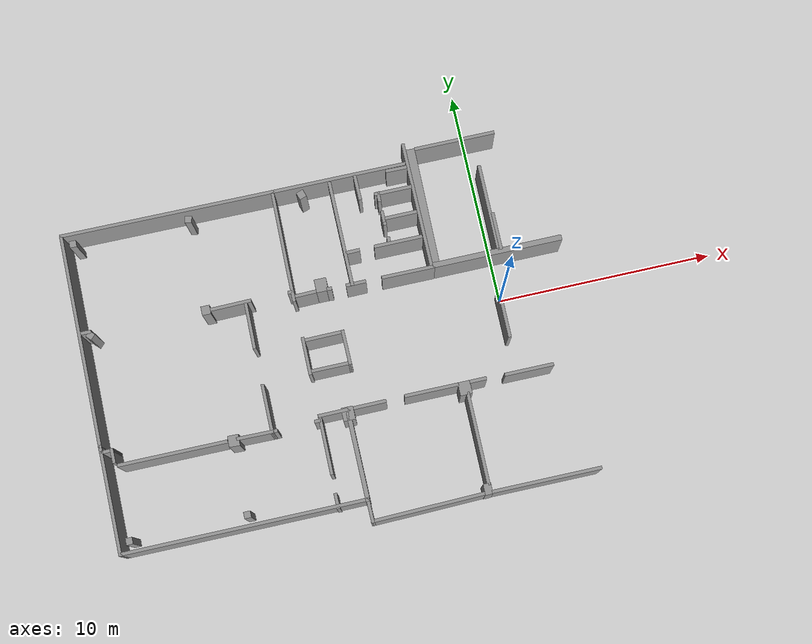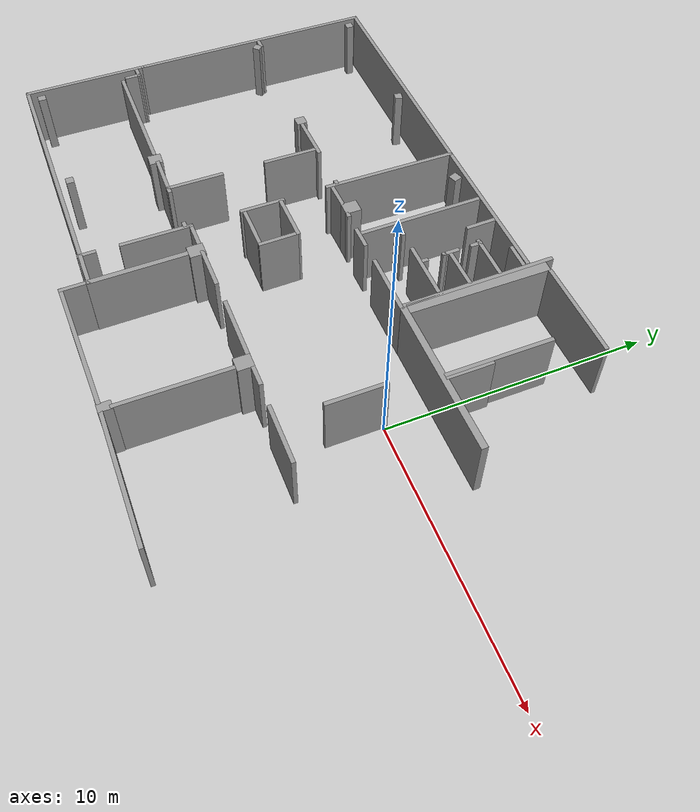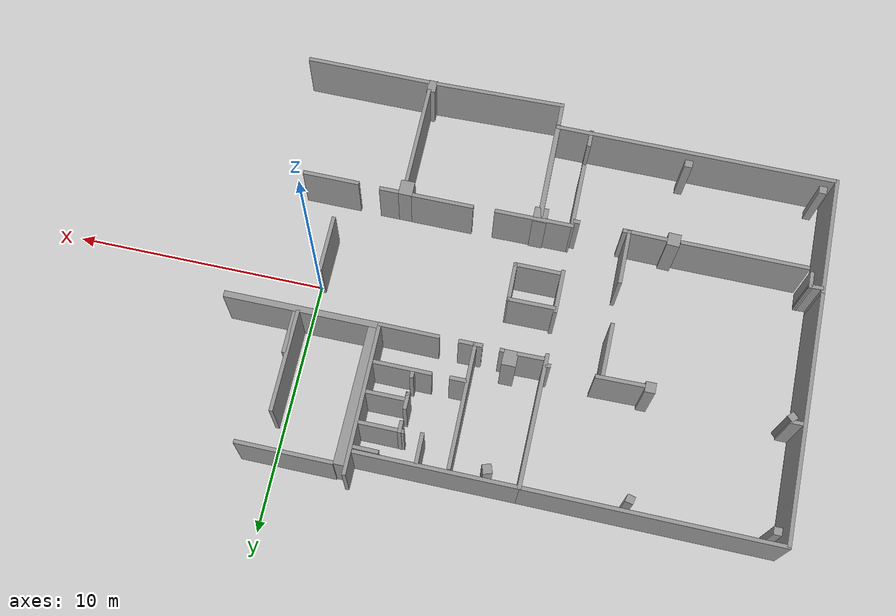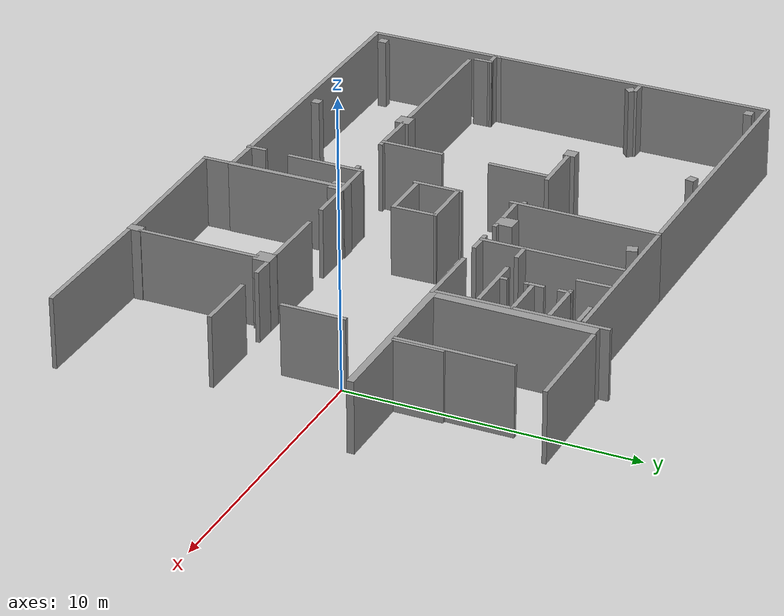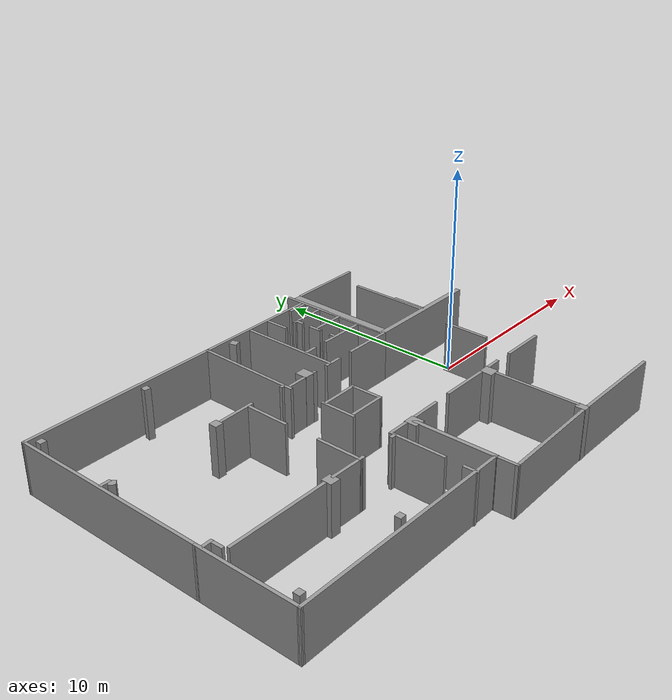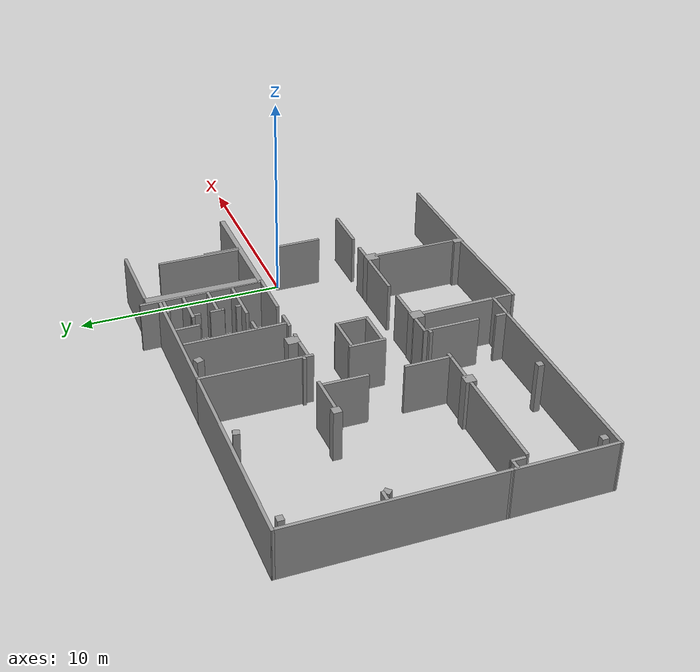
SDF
<sdf version="1.7">
 <model name="New_6_OG_normale_tueren">
  <pose>10.3487 -1.93317 0 0 -0 0</pose>
  <link name="Wall_101">
   <collision name="Wall_101_Collision">
    <geometry><box><size>1.67458 0.15 2.5</size></box></geometry>
    <pose>0 0 1.25 0 -0 0</pose>
   </collision>
   <visual name="Wall_101_Visual">
    <pose>0 0 1.25 0 -0 0</pose>
    <geometry><box><size>1.67458 0.15 2.5</size></box></geometry>
    <material>
     <script><uri>file://media/materials/scripts/gazebo.material</uri><name>Gazebo/Grey</name></script>
     <ambient>1 1 1 1</ambient>
    </material>
    <meta><layer>0</layer></meta>
   </visual>
   <pose>-22.5677 -2.0456 0 0 -0 -0.013157</pose>
  </link>
  <link name="Wall_103">
   <collision name="Wall_103_Collision">
    <geometry><box><size>0.272233 0.15 2.5</size></box></geometry>
    <pose>0 0 1.25 0 -0 0</pose>
   </collision>
   <visual name="Wall_103_Visual">
    <pose>0 0 1.25 0 -0 0</pose>
    <geometry><box><size>0.272233 0.15 2.5</size></box></geometry>
    <material>
     <script><uri>file://media/materials/scripts/gazebo.material</uri><name>Gazebo/Grey</name></script>
     <ambient>1 1 1 1</ambient>
    </material>
    <meta><layer>0</layer></meta>
   </visual>
   <pose>-19.7245 -2.0262 0 0 -0 0</pose>
  </link>
  <link name="Wall_105">
   <collision name="Wall_105_Collision">
    <geometry><box><size>2.25 0.15 2.5</size></box></geometry>
    <pose>0 0 1.25 0 -0 0</pose>
   </collision>
   <visual name="Wall_105_Visual">
    <pose>0 0 1.25 0 -0 0</pose>
    <geometry><box><size>2.25 0.15 2.5</size></box></geometry>
    <material>
     <script><uri>file://media/materials/scripts/gazebo.material</uri><name>Gazebo/Grey</name></script>
     <ambient>1 1 1 1</ambient>
    </material>
    <meta><layer>0</layer></meta>
   </visual>
   <pose>-21.7903 -1.00562 0 0 -0 1.5708</pose>
  </link>
  <link name="Wall_107">
   <collision name="Wall_107_Collision">
    <geometry><box><size>0.330367 0.15 2.5</size></box></geometry>
    <pose>0 0 1.25 0 -0 0</pose>
   </collision>
   <visual name="Wall_107_Visual">
    <pose>0 0 1.25 0 -0 0</pose>
    <geometry><box><size>0.330367 0.15 2.5</size></box></geometry>
    <material>
     <script><uri>file://media/materials/scripts/gazebo.material</uri><name>Gazebo/Grey</name></script>
     <ambient>1 1 1 1</ambient>
    </material>
    <meta><layer>0</layer></meta>
   </visual>
   <pose>-21.7001 -2.05463 0 0 -0 0.011083</pose>
  </link>
  <link name="Wall_109">
   <collision name="Wall_109_Collision">
    <geometry><box><size>2.12399 0.15 2.5</size></box></geometry>
    <pose>0 0 1.25 0 -0 0</pose>
   </collision>
   <visual name="Wall_109_Visual">
    <pose>0 0 1.25 0 -0 0</pose>
    <geometry><box><size>2.12399 0.15 2.5</size></box></geometry>
    <material>
     <script><uri>file://media/materials/scripts/gazebo.material</uri><name>Gazebo/Grey</name></script>
     <ambient>1 1 1 1</ambient>
    </material>
    <meta><layer>0</layer></meta>
   </visual>
   <pose>-21.7945 2.84097 0 0 -0 1.56199</pose>
  </link>
  <link name="Wall_11">
   <collision name="Wall_11_Collision">
    <geometry><box><size>3.11692 0.15 2.5</size></box></geometry>
    <pose>0 0 1.25 0 -0 0</pose>
   </collision>
   <visual name="Wall_11_Visual">
    <pose>0 0 1.25 0 -0 0</pose>
    <geometry><box><size>3.11692 0.15 2.5</size></box></geometry>
    <material>
     <script><uri>file://media/materials/scripts/gazebo.material</uri><name>Gazebo/Grey</name></script>
     <ambient>1 1 1 1</ambient>
    </material>
    <meta><layer>0</layer></meta>
   </visual>
   <pose>-18.0896 -1.80885 0 0 -0 0.006842</pose>
  </link>
  <link name="Wall_111">
   <collision name="Wall_111_Collision">
    <geometry><box><size>1.88436 0.15 2.5</size></box></geometry>
    <pose>0 0 1.25 0 -0 0</pose>
   </collision>
   <visual name="Wall_111_Visual">
    <pose>0 0 1.25 0 -0 0</pose>
    <geometry><box><size>1.88436 0.15 2.5</size></box></geometry>
    <material>
     <script><uri>file://media/materials/scripts/gazebo.material</uri><name>Gazebo/Grey</name></script>
     <ambient>1 1 1 1</ambient>
    </material>
    <meta><layer>0</layer></meta>
   </visual>
   <pose>-22.4578 3.95436 0 0 -0 -3.12616</pose>
  </link>
  <link name="Wall_113">
   <collision name="Wall_113_Collision">
    <geometry><box><size>5.27201 0.15 2.5</size></box></geometry>
    <pose>0 0 1.25 0 -0 0</pose>
   </collision>
   <visual name="Wall_113_Visual">
    <pose>0 0 1.25 0 -0 0</pose>
    <geometry><box><size>5.27201 0.15 2.5</size></box></geometry>
    <material>
     <script><uri>file://media/materials/scripts/gazebo.material</uri><name>Gazebo/Grey</name></script>
     <ambient>1 1 1 1</ambient>
    </material>
    <meta><layer>0</layer></meta>
   </visual>
   <pose>-19.6032 6.12793 0 0 -0 1.56061</pose>
  </link>
  <link name="Wall_115">
   <collision name="Wall_115_Collision">
    <geometry><box><size>0.205635 0.15 2.5</size></box></geometry>
    <pose>0 0 1.25 0 -0 0</pose>
   </collision>
   <visual name="Wall_115_Visual">
    <pose>0 0 1.25 0 -0 0</pose>
    <geometry><box><size>0.205635 0.15 2.5</size></box></geometry>
    <material>
     <script><uri>file://media/materials/scripts/gazebo.material</uri><name>Gazebo/Grey</name></script>
     <ambient>1 1 1 1</ambient>
    </material>
    <meta><layer>0</layer></meta>
   </visual>
   <pose>-19.7309 3.94996 0 0 -0 -0.010565</pose>
  </link>
  <link name="Wall_117">
   <collision name="Wall_117_Collision">
    <geometry><box><size>9.94018 0.15 2.5</size></box></geometry>
    <pose>0 0 1.25 0 -0 0</pose>
   </collision>
   <visual name="Wall_117_Visual">
    <pose>0 0 1.25 0 -0 0</pose>
    <geometry><box><size>9.94018 0.15 2.5</size></box></geometry>
    <material>
     <script><uri>file://media/materials/scripts/gazebo.material</uri><name>Gazebo/Grey</name></script>
     <ambient>1 1 1 1</ambient>
    </material>
    <meta><layer>0</layer></meta>
   </visual>
   <pose>-24.4721 8.71482 0 0 -0 -0.00354</pose>
  </link>
  <link name="Wall_120">
   <collision name="Wall_120_Collision">
    <geometry><box><size>0.232337 0.15 2.5</size></box></geometry>
    <pose>0 0 1.25 0 -0 0</pose>
   </collision>
   <visual name="Wall_120_Visual">
    <pose>0 0 1.25 0 -0 0</pose>
    <geometry><box><size>0.232337 0.15 2.5</size></box></geometry>
    <material>
     <script><uri>file://media/materials/scripts/gazebo.material</uri><name>Gazebo/Grey</name></script>
     <ambient>1 1 1 1</ambient>
    </material>
    <meta><layer>0</layer></meta>
   </visual>
   <pose>-17.9642 3.72928 0 0 -0 3.06898</pose>
  </link>
  <link name="Wall_122">
   <collision name="Wall_122_Collision">
    <geometry><box><size>1.03764 0.15 2.5</size></box></geometry>
    <pose>0 0 1.25 0 -0 0</pose>
   </collision>
   <visual name="Wall_122_Visual">
    <pose>0 0 1.25 0 -0 0</pose>
    <geometry><box><size>1.03764 0.15 2.5</size></box></geometry>
    <material>
     <script><uri>file://media/materials/scripts/gazebo.material</uri><name>Gazebo/Grey</name></script>
     <ambient>1 1 1 1</ambient>
    </material>
    <meta><layer>0</layer></meta>
   </visual>
   <pose>-19.0292 3.73228 0 0 -0 -3.12199</pose>
  </link>
  <link name="Wall_128">
   <collision name="Wall_128_Collision">
    <geometry><box><size>0.5 0.15 2.5</size></box></geometry>
    <pose>0 0 1.25 0 -0 0</pose>
   </collision>
   <visual name="Wall_128_Visual">
    <pose>0 0 1.25 0 -0 0</pose>
    <geometry><box><size>0.5 0.15 2.5</size></box></geometry>
    <material>
     <script><uri>file://media/materials/scripts/gazebo.material</uri><name>Gazebo/Grey</name></script>
     <ambient>1 1 1 1</ambient>
    </material>
    <meta><layer>0</layer></meta>
   </visual>
   <pose>-29.0803 4.12793 0 0 -0 0</pose>
  </link>
  <link name="Wall_13">
   <collision name="Wall_13_Collision">
    <geometry><box><size>2.47773 0.15 2.5</size></box></geometry>
    <pose>0 0 1.25 0 -0 0</pose>
   </collision>
   <visual name="Wall_13_Visual">
    <pose>0 0 1.25 0 -0 0</pose>
    <geometry><box><size>2.47773 0.15 2.5</size></box></geometry>
    <material>
     <script><uri>file://media/materials/scripts/gazebo.material</uri><name>Gazebo/Grey</name></script>
     <ambient>1 1 1 1</ambient>
    </material>
    <meta><layer>0</layer></meta>
   </visual>
   <pose>-14.4542 -1.77144 0 0 -0 0.000874</pose>
  </link>
  <link name="Wall_130">
   <collision name="Wall_130_Collision">
    <geometry><box><size>0.929146 0.15 2.5</size></box></geometry>
    <pose>0 0 1.25 0 -0 0</pose>
   </collision>
   <visual name="Wall_130_Visual">
    <pose>0 0 1.25 0 -0 0</pose>
    <geometry><box><size>0.929146 0.15 2.5</size></box></geometry>
    <material>
     <script><uri>file://media/materials/scripts/gazebo.material</uri><name>Gazebo/Grey</name></script>
     <ambient>1 1 1 1</ambient>
    </material>
    <meta><layer>0</layer></meta>
   </visual>
   <pose>-16.7342 3.71479 0 0 -0 0.00738</pose>
  </link>
  <link name="Wall_133">
   <collision name="Wall_133_Collision">
    <geometry><box><size>4.96069 0.15 2.5</size></box></geometry>
    <pose>0 0 1.25 0 -0 0</pose>
   </collision>
   <visual name="Wall_133_Visual">
    <pose>0 0 1.25 0 -0 0</pose>
    <geometry><box><size>4.96069 0.15 2.5</size></box></geometry>
    <material>
     <script><uri>file://media/materials/scripts/gazebo.material</uri><name>Gazebo/Grey</name></script>
     <ambient>1 1 1 1</ambient>
    </material>
    <meta><layer>0</layer></meta>
   </visual>
   <pose>-16.9219 6.12446 0 0 -0 -1.56443</pose>
  </link>
  <link name="Wall_135">
   <collision name="Wall_135_Collision">
    <geometry><box><size>6.30443 0.15 2.5</size></box></geometry>
    <pose>0 0 1.25 0 -0 0</pose>
   </collision>
   <visual name="Wall_135_Visual">
    <pose>0 0 1.25 0 -0 0</pose>
    <geometry><box><size>6.30443 0.15 2.5</size></box></geometry>
    <material>
     <script><uri>file://media/materials/scripts/gazebo.material</uri><name>Gazebo/Grey</name></script>
     <ambient>1 1 1 1</ambient>
    </material>
    <meta><layer>0</layer></meta>
   </visual>
   <pose>-16.4999 8.69565 0 0 -0 -0.000599</pose>
  </link>
  <link name="Wall_138">
   <collision name="Wall_138_Collision">
    <geometry><box><size>0.989569 0.15 2.5</size></box></geometry>
    <pose>0 0 1.25 0 -0 0</pose>
   </collision>
   <visual name="Wall_138_Visual">
    <pose>0 0 1.25 0 -0 0</pose>
    <geometry><box><size>0.989569 0.15 2.5</size></box></geometry>
    <material>
     <script><uri>file://media/materials/scripts/gazebo.material</uri><name>Gazebo/Grey</name></script>
     <ambient>1 1 1 1</ambient>
    </material>
    <meta><layer>0</layer></meta>
   </visual>
   <pose>-13.8162 8.52328 0 0 -0 3.13118</pose>
  </link>
  <link name="Wall_141">
   <collision name="Wall_141_Collision">
    <geometry><box><size>1.75 0.15 2.5</size></box></geometry>
    <pose>0 0 1.25 0 -0 0</pose>
   </collision>
   <visual name="Wall_141_Visual">
    <pose>0 0 1.25 0 -0 0</pose>
    <geometry><box><size>1.75 0.15 2.5</size></box></geometry>
    <material>
     <script><uri>file://media/materials/scripts/gazebo.material</uri><name>Gazebo/Grey</name></script>
     <ambient>1 1 1 1</ambient>
    </material>
    <meta><layer>0</layer></meta>
   </visual>
   <pose>-14.1793 7.57444 0 0 -0 0</pose>
  </link>
  <link name="Wall_143">
   <collision name="Wall_143_Collision">
    <geometry><box><size>1.18206 0.15 2.5</size></box></geometry>
    <pose>0 0 1.25 0 -0 0</pose>
   </collision>
   <visual name="Wall_143_Visual">
    <pose>0 0 1.25 0 -0 0</pose>
    <geometry><box><size>1.18206 0.15 2.5</size></box></geometry>
    <material>
     <script><uri>file://media/materials/scripts/gazebo.material</uri><name>Gazebo/Grey</name></script>
     <ambient>1 1 1 1</ambient>
    </material>
    <meta><layer>0</layer></meta>
   </visual>
   <pose>-15.7313 8.05542 0 0 -0 1.58774</pose>
  </link>
  <link name="Wall_147">
   <collision name="Wall_147_Collision">
    <geometry><box><size>5.86345 0.15 2.5</size></box></geometry>
    <pose>0 0 1.25 0 -0 0</pose>
   </collision>
   <visual name="Wall_147_Visual">
    <pose>0 0 1.25 0 -0 0</pose>
    <geometry><box><size>5.86345 0.15 2.5</size></box></geometry>
    <material>
     <script><uri>file://media/materials/scripts/gazebo.material</uri><name>Gazebo/Grey</name></script>
     <ambient>1 1 1 1</ambient>
    </material>
    <meta><layer>0</layer></meta>
   </visual>
   <pose>-13.2445 6.69415 0 0 -0 -1.56353</pose>
  </link>
  <link name="Wall_149">
   <collision name="Wall_149_Collision">
    <geometry><box><size>2.44907 0.15 2.5</size></box></geometry>
    <pose>0 0 1.25 0 -0 0</pose>
   </collision>
   <visual name="Wall_149_Visual">
    <pose>0 0 1.25 0 -0 0</pose>
    <geometry><box><size>2.44907 0.15 2.5</size></box></geometry>
    <material>
     <script><uri>file://media/materials/scripts/gazebo.material</uri><name>Gazebo/Grey</name></script>
     <ambient>1 1 1 1</ambient>
    </material>
    <meta><layer>0</layer></meta>
   </visual>
   <pose>-14.3183 3.71507 0 0 -0 -0.002254</pose>
  </link>
  <link name="Wall_15">
   <collision name="Wall_15_Collision">
    <geometry><box><size>0.776555 0.15 2.5</size></box></geometry>
    <pose>0 0 1.25 0 -0 0</pose>
   </collision>
   <visual name="Wall_15_Visual">
    <pose>0 0 1.25 0 -0 0</pose>
    <geometry><box><size>0.776555 0.15 2.5</size></box></geometry>
    <material>
     <script><uri>file://media/materials/scripts/gazebo.material</uri><name>Gazebo/Grey</name></script>
     <ambient>1 1 1 1</ambient>
    </material>
    <meta><layer>0</layer></meta>
   </visual>
   <pose>-12.3227 -1.77109 0 0 -0 0.00822</pose>
  </link>
  <link name="Wall_154">
   <collision name="Wall_154_Collision">
    <geometry><box><size>5.9975 0.25 2.5</size></box></geometry>
    <pose>0 0 1.25 0 -0 0</pose>
   </collision>
   <visual name="Wall_154_Visual">
    <pose>0 0 1.25 0 -0 0</pose>
    <geometry><box><size>5.9975 0.25 2.5</size></box></geometry>
    <material>
     <script><uri>file://media/materials/scripts/gazebo.material</uri><name>Gazebo/Grey</name></script>
     <ambient>1 1 1 1</ambient>
    </material>
    <meta><layer>0</layer></meta>
   </visual>
   <pose>-10.1575 3.77921 0 0 -0 -3.13871</pose>
  </link>
  <link name="Wall_158">
   <collision name="Wall_158_Collision">
    <geometry><box><size>5.40653 0.4 2.5</size></box></geometry>
    <pose>0 0 1.25 0 -0 0</pose>
   </collision>
   <visual name="Wall_158_Visual">
    <pose>0 0 1.25 0 -0 0</pose>
    <geometry><box><size>5.40653 0.4 2.5</size></box></geometry>
    <material>
     <script><uri>file://media/materials/scripts/gazebo.material</uri><name>Gazebo/Grey</name></script>
     <ambient>1 1 1 1</ambient>
    </material>
    <meta><layer>0</layer></meta>
   </visual>
   <pose>-13.0102 6.59567 0 0 -0 -1.57821</pose>
  </link>
  <link name="Wall_162">
   <collision name="Wall_162_Collision">
    <geometry><box><size>3.75 0.15 2.5</size></box></geometry>
    <pose>0 0 1.25 0 -0 0</pose>
   </collision>
   <visual name="Wall_162_Visual">
    <pose>0 0 1.25 0 -0 0</pose>
    <geometry><box><size>3.75 0.15 2.5</size></box></geometry>
    <material>
     <script><uri>file://media/materials/scripts/gazebo.material</uri><name>Gazebo/Grey</name></script>
     <ambient>1 1 1 1</ambient>
    </material>
    <meta><layer>0</layer></meta>
   </visual>
   <pose>-10.9184 9.26341 0 0 -0 3.14159</pose>
  </link>
  <link name="Wall_17">
   <collision name="Wall_17_Collision">
    <geometry><box><size>2.25 0.15 2.5</size></box></geometry>
    <pose>0 0 1.25 0 -0 0</pose>
   </collision>
   <visual name="Wall_17_Visual">
    <pose>0 0 1.25 0 -0 0</pose>
    <geometry><box><size>2.25 0.15 2.5</size></box></geometry>
    <material>
     <script><uri>file://media/materials/scripts/gazebo.material</uri><name>Gazebo/Grey</name></script>
     <ambient>1 1 1 1</ambient>
    </material>
    <meta><layer>0</layer></meta>
   </visual>
   <pose>-9.97809 -1.79869 0 0 -0 0</pose>
  </link>
  <link name="Wall_170">
   <collision name="Wall_170_Collision">
    <geometry><box><size>4.03895 0.15 2.5</size></box></geometry>
    <pose>0 0 1.25 0 -0 0</pose>
   </collision>
   <visual name="Wall_170_Visual">
    <pose>0 0 1.25 0 -0 0</pose>
    <geometry><box><size>4.03895 0.15 2.5</size></box></geometry>
    <material>
     <script><uri>file://media/materials/scripts/gazebo.material</uri><name>Gazebo/Grey</name></script>
     <ambient>1 1 1 1</ambient>
    </material>
    <meta><layer>0</layer></meta>
   </visual>
   <pose>-10.0794 5.85162 0 0 -0 -1.57251</pose>
  </link>
  <link name="Wall_174">
   <collision name="Wall_174_Collision">
    <geometry><box><size>1.75 0.15 2.5</size></box></geometry>
    <pose>0 0 1.25 0 -0 0</pose>
   </collision>
   <visual name="Wall_174_Visual">
    <pose>0 0 1.25 0 -0 0</pose>
    <geometry><box><size>1.75 0.15 2.5</size></box></geometry>
    <material>
     <script><uri>file://media/materials/scripts/gazebo.material</uri><name>Gazebo/Grey</name></script>
     <ambient>1 1 1 1</ambient>
    </material>
    <meta><layer>0</layer></meta>
   </visual>
   <pose>-9.967 4.70592 0 0 -0 -1.5708</pose>
  </link>
  <link name="Wall_25">
   <collision name="Wall_25_Collision">
    <geometry><box><size>5 0.15 2.5</size></box></geometry>
    <pose>0 0 1.25 0 -0 0</pose>
   </collision>
   <visual name="Wall_25_Visual">
    <pose>0 0 1.25 0 -0 0</pose>
    <geometry><box><size>5 0.15 2.5</size></box></geometry>
    <material>
     <script><uri>file://media/materials/scripts/gazebo.material</uri><name>Gazebo/Grey</name></script>
     <ambient>1 1 1 1</ambient>
    </material>
    <meta><layer>0</layer></meta>
   </visual>
   <pose>-10.3344 -6.76717 0 0 -0 0</pose>
  </link>
  <link name="Wall_287">
   <collision name="Wall_287_Collision">
    <geometry><box><size>2.25 0.15 2.5</size></box></geometry>
    <pose>0 0 1.25 0 -0 0</pose>
   </collision>
   <visual name="Wall_287_Visual">
    <pose>0 0 1.25 0 -0 0</pose>
    <geometry><box><size>2.25 0.15 2.5</size></box></geometry>
    <material>
     <script><uri>file://media/materials/scripts/gazebo.material</uri><name>Gazebo/Grey</name></script>
     <ambient>1 1 1 1</ambient>
    </material>
    <meta><layer>0</layer></meta>
   </visual>
   <pose>-10.4874 0.939904 0 0 -0 -1.5708</pose>
  </link>
  <link name="Wall_3">
   <collision name="Wall_3_Collision">
    <geometry><box><size>9.93916 0.15 2.5</size></box></geometry>
    <pose>0 0 1.25 0 -0 0</pose>
   </collision>
   <visual name="Wall_3_Visual">
    <pose>0 0 1.25 0 -0 0</pose>
    <geometry><box><size>9.93916 0.15 2.5</size></box></geometry>
    <material>
     <script><uri>file://media/materials/scripts/gazebo.material</uri><name>Gazebo/Grey</name></script>
     <ambient>1 1 1 1</ambient>
    </material>
    <meta><layer>0</layer></meta>
   </visual>
   <pose>-29.3802 3.82889 0 0 -0 -1.57346</pose>
  </link>
  <link name="Wall_318">
   <collision name="Wall_318_Collision">
    <geometry><box><size>0.672429 0.15 2.5</size></box></geometry>
    <pose>0 0 1.25 0 -0 0</pose>
   </collision>
   <visual name="Wall_318_Visual">
    <pose>0 0 1.25 0 -0 0</pose>
    <geometry><box><size>0.672429 0.15 2.5</size></box></geometry>
    <material>
     <script><uri>file://media/materials/scripts/gazebo.material</uri><name>Gazebo/Grey</name></script>
     <ambient>1 1 1 1</ambient>
    </material>
    <meta><layer>0</layer></meta>
   </visual>
   <pose>-28.9083 -1.5823 0 0 -0 -1.55814</pose>
  </link>
  <link name="Wall_320">
   <collision name="Wall_320_Collision">
    <geometry><box><size>0.560188 0.15 2.5</size></box></geometry>
    <pose>0 0 1.25 0 -0 0</pose>
   </collision>
   <visual name="Wall_320_Visual">
    <pose>0 0 1.25 0 -0 0</pose>
    <geometry><box><size>0.560188 0.15 2.5</size></box></geometry>
    <material>
     <script><uri>file://media/materials/scripts/gazebo.material</uri><name>Gazebo/Grey</name></script>
     <ambient>1 1 1 1</ambient>
    </material>
    <meta><layer>0</layer></meta>
   </visual>
   <pose>-29.1166 -1.32772 0 0 -0 -3.10935</pose>
  </link>
  <link name="Wall_322">
   <collision name="Wall_322_Collision">
    <geometry><box><size>0.51 0.5 2.5</size></box></geometry>
    <pose>0 0 1.25 0 -0 0</pose>
   </collision>
   <visual name="Wall_322_Visual">
    <pose>0 0 1.25 0 -0 0</pose>
    <geometry><box><size>0.51 0.5 2.5</size></box></geometry>
    <material>
     <script><uri>file://media/materials/scripts/gazebo.material</uri><name>Gazebo/Grey</name></script>
     <ambient>1 1 1 1</ambient>
    </material>
    <meta><layer>0</layer></meta>
   </visual>
   <pose>-23.5356 -2.08698 0 0 -0 -1.59662</pose>
  </link>
  <link name="Wall_324">
   <collision name="Wall_324_Collision">
    <geometry><box><size>1.75 0.15 2.5</size></box></geometry>
    <pose>0 0 1.25 0 -0 0</pose>
   </collision>
   <visual name="Wall_324_Visual">
    <pose>0 0 1.25 0 -0 0</pose>
    <geometry><box><size>1.75 0.15 2.5</size></box></geometry>
    <material>
     <script><uri>file://media/materials/scripts/gazebo.material</uri><name>Gazebo/Grey</name></script>
     <ambient>0 0 0 1</ambient>
    </material>
    <meta><layer>0</layer></meta>
   </visual>
   <pose>-19.5995 0.944545 0 0 -0 -1.5708</pose>
  </link>
  <link name="Wall_325">
   <collision name="Wall_325_Collision">
    <geometry><box><size>1.60003 0.15 2.5</size></box></geometry>
    <pose>0 0 1.25 0 -0 0</pose>
   </collision>
   <visual name="Wall_325_Visual">
    <pose>0 0 1.25 0 -0 0</pose>
    <geometry><box><size>1.60003 0.15 2.5</size></box></geometry>
    <material>
     <script><uri>file://media/materials/scripts/gazebo.material</uri><name>Gazebo/Grey</name></script>
     <ambient>1 1 1 1</ambient>
    </material>
    <meta><layer>0</layer></meta>
   </visual>
   <pose>-17.7677 0.951932 0 0 -0 -1.557</pose>
  </link>
  <link name="Wall_326">
   <collision name="Wall_326_Collision">
    <geometry><box><size>1.83501 0.15 2.5</size></box></geometry>
    <pose>0 0 1.25 0 -0 0</pose>
   </collision>
   <visual name="Wall_326_Visual">
    <pose>0 0 1.25 0 -0 0</pose>
    <geometry><box><size>1.83501 0.15 2.5</size></box></geometry>
    <material>
     <script><uri>file://media/materials/scripts/gazebo.material</uri><name>Gazebo/Grey</name></script>
     <ambient>1 1 1 1</ambient>
    </material>
    <meta><layer>0</layer></meta>
   </visual>
   <pose>-18.6052 0.224432 0 0 -0 -3.13863</pose>
  </link>
  <link name="Wall_329">
   <collision name="Wall_329_Collision">
    <geometry><box><size>1.88576 0.15 2.5</size></box></geometry>
    <pose>0 0 1.25 0 -0 0</pose>
   </collision>
   <visual name="Wall_329_Visual">
    <pose>0 0 1.25 0 -0 0</pose>
    <geometry><box><size>1.88576 0.15 2.5</size></box></geometry>
    <material>
     <script><uri>file://media/materials/scripts/gazebo.material</uri><name>Gazebo/Grey</name></script>
     <ambient>1 1 1 1</ambient>
    </material>
    <meta><layer>0</layer></meta>
   </visual>
   <pose>-18.6455 1.66789 0 0 -0 -3.13117</pose>
  </link>
  <link name="Wall_332">
   <collision name="Wall_332_Collision">
    <geometry><box><size>0.41 0.4 2.5</size></box></geometry>
    <pose>0 0 1.25 0 -0 0</pose>
   </collision>
   <visual name="Wall_332_Visual">
    <pose>0 0 1.25 0 -0 0</pose>
    <geometry><box><size>0.41 0.4 2.5</size></box></geometry>
    <material>
     <script><uri>file://media/materials/scripts/gazebo.material</uri><name>Gazebo/Grey</name></script>
     <ambient>1 1 1 1</ambient>
    </material>
    <meta><layer>0</layer></meta>
   </visual>
   <pose>-23.6017 3.96443 0 0 -0 -1.5708</pose>
  </link>
  <link name="Wall_339">
   <collision name="Wall_339_Collision">
    <geometry><box><size>0.309899 0.3 2.5</size></box></geometry>
    <pose>0 0 1.25 0 -0 0</pose>
   </collision>
   <visual name="Wall_339_Visual">
    <pose>0 0 1.25 0 -0 0</pose>
    <geometry><box><size>0.309899 0.3 2.5</size></box></geometry>
    <material>
     <script><uri>file://media/materials/scripts/gazebo.material</uri><name>Gazebo/Grey</name></script>
     <ambient>1 1 1 1</ambient>
    </material>
    <meta><layer>0</layer></meta>
   </visual>
   <pose>-28.8932 3.95367 0 0 -0 0.785398</pose>
  </link>
  <link name="Wall_349">
   <collision name="Wall_349_Collision">
    <geometry><box><size>0.61 0.55 2.5</size></box></geometry>
    <pose>0 0 1.25 0 -0 0</pose>
   </collision>
   <visual name="Wall_349_Visual">
    <pose>0 0 1.25 0 -0 0</pose>
    <geometry><box><size>0.61 0.55 2.5</size></box></geometry>
    <material>
     <script><uri>file://media/materials/scripts/gazebo.material</uri><name>Gazebo/Grey</name></script>
     <ambient>1 1 1 1</ambient>
    </material>
    <meta><layer>0</layer></meta>
   </visual>
   <pose>-12.9732 -2.00283 0 0 -0 -1.5708</pose>
  </link>
  <link name="Wall_360">
   <collision name="Wall_360_Collision">
    <geometry><box><size>0.31 0.3 2.5</size></box></geometry>
    <pose>0 0 1.25 0 -0 0</pose>
   </collision>
   <visual name="Wall_360_Visual">
    <pose>0 0 1.25 0 -0 0</pose>
    <geometry><box><size>0.31 0.3 2.5</size></box></geometry>
    <material>
     <script><uri>file://media/materials/scripts/gazebo.material</uri><name>Gazebo/Grey</name></script>
     <ambient>1 1 1 1</ambient>
    </material>
    <meta><layer>0</layer></meta>
   </visual>
   <pose>-28.8967 -5.42983 0 0 -0 -1.5708</pose>
  </link>
  <link name="Wall_362">
   <collision name="Wall_362_Collision">
    <geometry><box><size>0.31 0.3 2.5</size></box></geometry>
    <pose>0 0 1.25 0 -0 0</pose>
   </collision>
   <visual name="Wall_362_Visual">
    <pose>0 0 1.25 0 -0 0</pose>
    <geometry><box><size>0.31 0.3 2.5</size></box></geometry>
    <material>
     <script><uri>file://media/materials/scripts/gazebo.material</uri><name>Gazebo/Grey</name></script>
     <ambient>1 1 1 1</ambient>
    </material>
    <meta><layer>0</layer></meta>
   </visual>
   <pose>-23.5937 -5.41883 0 0 -0 0</pose>
  </link>
  <link name="Wall_365">
   <collision name="Wall_365_Collision">
    <geometry><box><size>0.31 0.3 2.5</size></box></geometry>
    <pose>0 0 1.25 0 -0 0</pose>
   </collision>
   <visual name="Wall_365_Visual">
    <pose>0 0 1.25 0 -0 0</pose>
    <geometry><box><size>0.31 0.3 2.5</size></box></geometry>
    <material>
     <script><uri>file://media/materials/scripts/gazebo.material</uri><name>Gazebo/Grey</name></script>
     <ambient>1 1 1 1</ambient>
    </material>
    <meta><layer>0</layer></meta>
   </visual>
   <pose>-28.899 8.2578 0 0 -0 0</pose>
  </link>
  <link name="Wall_367">
   <collision name="Wall_367_Collision">
    <geometry><box><size>0.30922 0.3 2.5</size></box></geometry>
    <pose>0 0 1.25 0 -0 0</pose>
   </collision>
   <visual name="Wall_367_Visual">
    <pose>0 0 1.25 0 -0 0</pose>
    <geometry><box><size>0.30922 0.3 2.5</size></box></geometry>
    <material>
     <script><uri>file://media/materials/scripts/gazebo.material</uri><name>Gazebo/Grey</name></script>
     <ambient>1 1 1 1</ambient>
    </material>
    <meta><layer>0</layer></meta>
   </visual>
   <pose>-23.5645 8.25668 0 0 -0 -0.218669</pose>
  </link>
  <link name="Wall_371">
   <collision name="Wall_371_Collision">
    <geometry><box><size>0.359487 0.35 2.5</size></box></geometry>
    <pose>0 0 1.25 0 -0 0</pose>
   </collision>
   <visual name="Wall_371_Visual">
    <pose>0 0 1.25 0 -0 0</pose>
    <geometry><box><size>0.359487 0.35 2.5</size></box></geometry>
    <material>
     <script><uri>file://media/materials/scripts/gazebo.material</uri><name>Gazebo/Grey</name></script>
     <ambient>1 1 1 1</ambient>
    </material>
    <meta><layer>0</layer></meta>
   </visual>
   <pose>-18.3022 8.28137 0 0 -0 -1.24905</pose>
  </link>
  <link name="Wall_373">
   <collision name="Wall_373_Collision">
    <geometry><box><size>0.61 0.55 2.5</size></box></geometry>
    <pose>0 0 1.25 0 -0 0</pose>
   </collision>
   <visual name="Wall_373_Visual">
    <pose>0 0 1.25 0 -0 0</pose>
    <geometry><box><size>0.61 0.55 2.5</size></box></geometry>
    <material>
     <script><uri>file://media/materials/scripts/gazebo.material</uri><name>Gazebo/Grey</name></script>
     <ambient>1 1 1 1</ambient>
    </material>
    <meta><layer>0</layer></meta>
   </visual>
   <pose>-18.3121 -1.99968 0 0 -0 -1.5708</pose>
  </link>
  <link name="Wall_375">
   <collision name="Wall_375_Collision">
    <geometry><box><size>0.61 0.55 2.5</size></box></geometry>
    <pose>0 0 1.25 0 -0 0</pose>
   </collision>
   <visual name="Wall_375_Visual">
    <pose>0 0 1.25 0 -0 0</pose>
    <geometry><box><size>0.61 0.55 2.5</size></box></geometry>
    <material>
     <script><uri>file://media/materials/scripts/gazebo.material</uri><name>Gazebo/Grey</name></script>
     <ambient>1 1 1 1</ambient>
    </material>
    <meta><layer>0</layer></meta>
   </visual>
   <pose>-18.2867 3.9686 0 0 -0 -1.5708</pose>
  </link>
  <link name="Wall_379">
   <collision name="Wall_379_Collision">
    <geometry><box><size>0.5 0.35 2.5</size></box></geometry>
    <pose>0 0 1.25 0 -0 0</pose>
   </collision>
   <visual name="Wall_379_Visual">
    <pose>0 0 1.25 0 -0 0</pose>
    <geometry><box><size>0.5 0.35 2.5</size></box></geometry>
    <material>
     <script><uri>file://media/materials/scripts/gazebo.material</uri><name>Gazebo/Grey</name></script>
     <ambient>1 1 1 1</ambient>
    </material>
    <meta><layer>0</layer></meta>
   </visual>
   <pose>-12.9747 -6.60989 0 0 -0 -1.5708</pose>
  </link>
  <link name="Wall_4">
   <collision name="Wall_4_Collision">
    <geometry><box><size>5 0.15 2.5</size></box></geometry>
    <pose>0 0 1.25 0 -0 0</pose>
   </collision>
   <visual name="Wall_4_Visual">
    <pose>0 0 1.25 0 -0 0</pose>
    <geometry><box><size>5 0.15 2.5</size></box></geometry>
    <material>
     <script><uri>file://media/materials/scripts/gazebo.material</uri><name>Gazebo/Grey</name></script>
     <ambient>1 1 1 1</ambient>
    </material>
    <meta><layer>0</layer></meta>
   </visual>
   <pose>-29.3933 -3.49067 0 0 -0 -1.5708</pose>
  </link>
  <link name="Wall_408">
   <collision name="Wall_408_Collision">
    <geometry><box><size>0.646233 0.15 2.5</size></box></geometry>
    <pose>0 0 1.25 0 -0 0</pose>
   </collision>
   <visual name="Wall_408_Visual">
    <pose>0 0 1.25 0 -0 0</pose>
    <geometry><box><size>0.646233 0.15 2.5</size></box></geometry>
    <material>
     <script><uri>file://media/materials/scripts/gazebo.material</uri><name>Gazebo/Grey</name></script>
     <ambient>1 1 1 1</ambient>
    </material>
    <meta><layer>0</layer></meta>
   </visual>
   <pose>-16.5647 5.18792 0 0 -0 0.009821</pose>
  </link>
  <link name="Wall_410">
   <collision name="Wall_410_Collision">
    <geometry><box><size>2.25 0.15 2.5</size></box></geometry>
    <pose>0 0 1.25 0 -0 0</pose>
   </collision>
   <visual name="Wall_410_Visual">
    <pose>0 0 1.25 0 -0 0</pose>
    <geometry><box><size>2.25 0.15 2.5</size></box></geometry>
    <material>
     <script><uri>file://media/materials/scripts/gazebo.material</uri><name>Gazebo/Grey</name></script>
     <ambient>1 1 1 1</ambient>
    </material>
    <meta><layer>0</layer></meta>
   </visual>
   <pose>-14.4484 5.19478 0 0 -0 0</pose>
  </link>
  <link name="Wall_412">
   <collision name="Wall_412_Collision">
    <geometry><box><size>0.25 0.15 2.5</size></box></geometry>
    <pose>0 0 1.25 0 -0 0</pose>
   </collision>
   <visual name="Wall_412_Visual">
    <pose>0 0 1.25 0 -0 0</pose>
    <geometry><box><size>0.25 0.15 2.5</size></box></geometry>
    <material>
     <script><uri>file://media/materials/scripts/gazebo.material</uri><name>Gazebo/Grey</name></script>
     <ambient>1 1 1 1</ambient>
    </material>
    <meta><layer>0</layer></meta>
   </visual>
   <pose>-14.8528 5.38359 0 0 -0 -1.5708</pose>
  </link>
  <link name="Wall_415">
   <collision name="Wall_415_Collision">
    <geometry><box><size>0.15 0.15 2.5</size></box></geometry>
    <pose>0 0 1.25 0 -0 0</pose>
   </collision>
   <visual name="Wall_415_Visual">
    <pose>0 0 1.25 0 -0 0</pose>
    <geometry><box><size>0.15 0.15 2.5</size></box></geometry>
    <material>
     <script><uri>file://media/materials/scripts/gazebo.material</uri><name>Gazebo/Grey</name></script>
     <ambient>1 1 1 1</ambient>
    </material>
    <meta><layer>0</layer></meta>
   </visual>
   <pose>-14.866 6.14116 0 0 -0 0</pose>
  </link>
  <link name="Wall_417">
   <collision name="Wall_417_Collision">
    <geometry><box><size>1.59531 0.15 2.5</size></box></geometry>
    <pose>0 0 1.25 0 -0 0</pose>
   </collision>
   <visual name="Wall_417_Visual">
    <pose>0 0 1.25 0 -0 0</pose>
    <geometry><box><size>1.59531 0.15 2.5</size></box></geometry>
    <material>
     <script><uri>file://media/materials/scripts/gazebo.material</uri><name>Gazebo/Grey</name></script>
     <ambient>1 1 1 1</ambient>
    </material>
    <meta><layer>0</layer></meta>
   </visual>
   <pose>-14.0152 6.37305 0 0 -0 0.005352</pose>
  </link>
  <link name="Wall_421">
   <collision name="Wall_421_Collision">
    <geometry><box><size>0.66828 0.15 2.5</size></box></geometry>
    <pose>0 0 1.25 0 -0 0</pose>
   </collision>
   <visual name="Wall_421_Visual">
    <pose>0 0 1.25 0 -0 0</pose>
    <geometry><box><size>0.66828 0.15 2.5</size></box></geometry>
    <material>
     <script><uri>file://media/materials/scripts/gazebo.material</uri><name>Gazebo/Grey</name></script>
     <ambient>1 1 1 1</ambient>
    </material>
    <meta><layer>0</layer></meta>
   </visual>
   <pose>-14.877 6.41172 0 0 -0 -1.5708</pose>
  </link>
  <link name="Wall_423">
   <collision name="Wall_423_Collision">
    <geometry><box><size>0.467121 0.15 2.5</size></box></geometry>
    <pose>0 0 1.25 0 -0 0</pose>
   </collision>
   <visual name="Wall_423_Visual">
    <pose>0 0 1.25 0 -0 0</pose>
    <geometry><box><size>0.467121 0.15 2.5</size></box></geometry>
    <material>
     <script><uri>file://media/materials/scripts/gazebo.material</uri><name>Gazebo/Grey</name></script>
     <ambient>1 1 1 1</ambient>
    </material>
    <meta><layer>0</layer></meta>
   </visual>
   <pose>-14.877 7.42496 0 0 -0 1.5708</pose>
  </link>
  <link name="Wall_5">
   <collision name="Wall_5_Collision">
    <geometry><box><size>11.2734 0.15 2.5</size></box></geometry>
    <pose>0 0 1.25 0 -0 0</pose>
   </collision>
   <visual name="Wall_5_Visual">
    <pose>0 0 1.25 0 -0 0</pose>
    <geometry><box><size>11.2734 0.15 2.5</size></box></geometry>
    <material>
     <script><uri>file://media/materials/scripts/gazebo.material</uri><name>Gazebo/Grey</name></script>
     <ambient>1 1 1 1</ambient>
    </material>
    <meta><layer>0</layer></meta>
   </visual>
   <pose>-23.8316 -5.90969 0 0 -0 0.001075</pose>
  </link>
  <link name="Wall_6">
   <collision name="Wall_6_Collision">
    <geometry><box><size>1.13743 0.15 2.5</size></box></geometry>
    <pose>0 0 1.25 0 -0 0</pose>
   </collision>
   <visual name="Wall_6_Visual">
    <pose>0 0 1.25 0 -0 0</pose>
    <geometry><box><size>1.13743 0.15 2.5</size></box></geometry>
    <material>
     <script><uri>file://media/materials/scripts/gazebo.material</uri><name>Gazebo/Grey</name></script>
     <ambient>1 1 1 1</ambient>
    </material>
    <meta><layer>0</layer></meta>
   </visual>
   <pose>-18.2617 -6.39736 0 0 -0 -1.55416</pose>
  </link>
  <link name="Wall_7">
   <collision name="Wall_7_Collision">
    <geometry><box><size>5.21828 0.15 2.5</size></box></geometry>
    <pose>0 0 1.25 0 -0 0</pose>
   </collision>
   <visual name="Wall_7_Visual">
    <pose>0 0 1.25 0 -0 0</pose>
    <geometry><box><size>5.21828 0.15 2.5</size></box></geometry>
    <material>
     <script><uri>file://media/materials/scripts/gazebo.material</uri><name>Gazebo/Grey</name></script>
     <ambient>1 1 1 1</ambient>
    </material>
    <meta><layer>0</layer></meta>
   </visual>
   <pose>-15.7266 -6.82834 0 0 -0 0.024731</pose>
  </link>
  <link name="Wall_9">
   <collision name="Wall_9_Collision">
    <geometry><box><size>4.25 0.15 2.5</size></box></geometry>
    <pose>0 0 1.25 0 -0 0</pose>
   </collision>
   <visual name="Wall_9_Visual">
    <pose>0 0 1.25 0 -0 0</pose>
    <geometry><box><size>4.25 0.15 2.5</size></box></geometry>
    <material>
     <script><uri>file://media/materials/scripts/gazebo.material</uri><name>Gazebo/Grey</name></script>
     <ambient>1 1 1 1</ambient>
    </material>
    <meta><layer>0</layer></meta>
   </visual>
   <pose>-12.9005 -4.32583 0 0 -0 -1.5708</pose>
  </link>
  <link name="Wall_93">
   <collision name="Wall_93_Collision">
    <geometry><box><size>4.07439 0.2 2.5</size></box></geometry>
    <pose>0 0 1.25 0 -0 0</pose>
   </collision>
   <visual name="Wall_93_Visual">
    <pose>0 0 1.25 0 -0 0</pose>
    <geometry><box><size>4.07439 0.2 2.5</size></box></geometry>
    <material>
     <script><uri>file://media/materials/scripts/gazebo.material</uri><name>Gazebo/Grey</name></script>
     <ambient>1 1 1 1</ambient>
    </material>
    <meta><layer>0</layer></meta>
   </visual>
   <pose>-18.2859 -3.9667 0 0 -0 1.57909</pose>
  </link>
  <link name="Wall_95">
   <collision name="Wall_95_Collision">
    <geometry><box><size>2.75 0.15 2.5</size></box></geometry>
    <pose>0 0 1.25 0 -0 0</pose>
   </collision>
   <visual name="Wall_95_Visual">
    <pose>0 0 1.25 0 -0 0</pose>
    <geometry><box><size>2.75 0.15 2.5</size></box></geometry>
    <material>
     <script><uri>file://media/materials/scripts/gazebo.material</uri><name>Gazebo/Grey</name></script>
     <ambient>1 1 1 1</ambient>
    </material>
    <meta><layer>0</layer></meta>
   </visual>
   <pose>-19.5831 -3.11899 0 0 -0 -1.5708</pose>
  </link>
  <link name="Wall_97">
   <collision name="Wall_97_Collision">
    <geometry><box><size>0.701153 0.15 2.5</size></box></geometry>
    <pose>0 0 1.25 0 -0 0</pose>
   </collision>
   <visual name="Wall_97_Visual">
    <pose>0 0 1.25 0 -0 0</pose>
    <geometry><box><size>0.701153 0.15 2.5</size></box></geometry>
    <material>
     <script><uri>file://media/materials/scripts/gazebo.material</uri><name>Gazebo/Grey</name></script>
     <ambient>1 1 1 1</ambient>
    </material>
    <meta><layer>0</layer></meta>
   </visual>
   <pose>-19.6138 -5.67842 0 0 -0 -1.56731</pose>
  </link>
  <link name="Wall_99">
   <collision name="Wall_99_Collision">
    <geometry><box><size>5 0.15 2.5</size></box></geometry>
    <pose>0 0 1.25 0 -0 0</pose>
   </collision>
   <visual name="Wall_99_Visual">
    <pose>0 0 1.25 0 -0 0</pose>
    <geometry><box><size>5 0.15 2.5</size></box></geometry>
    <material>
     <script><uri>file://media/materials/scripts/gazebo.material</uri><name>Gazebo/Grey</name></script>
     <ambient>1 1 1 1</ambient>
    </material>
    <meta><layer>0</layer></meta>
   </visual>
   <pose>-26.2975 -2.05021 0 0 -0 0</pose>
  </link>
  <static>1</static>
 </model>
</sdf>
